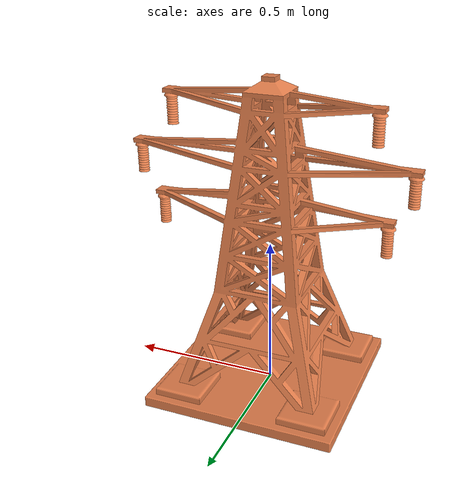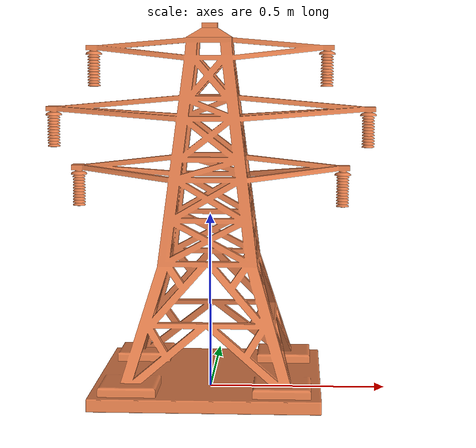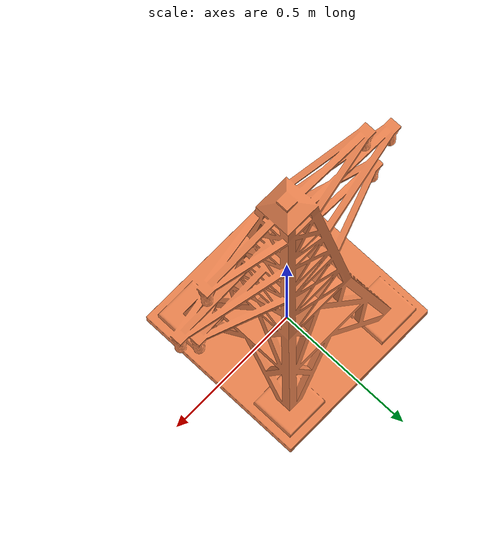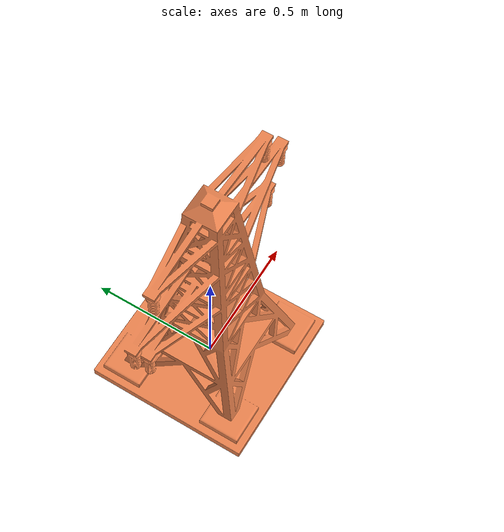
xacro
<?xml version="1.0"?>
<robot name="beam">

    <link name="base_link">
      <visual>
        <origin rpy="0 0 0" xyz="0 0 0"/>
        <geometry>
          <mesh filename="package://aerial_robot_model/urdf/other_objects/tower2.stl" scale="0.0006 0.0006 0.0004"/>
        </geometry>
        <material name="gray">
          <color rgba="0.9 .5 0.3 1"/>
        </material>
      </visual>
    </link>

</robot>
